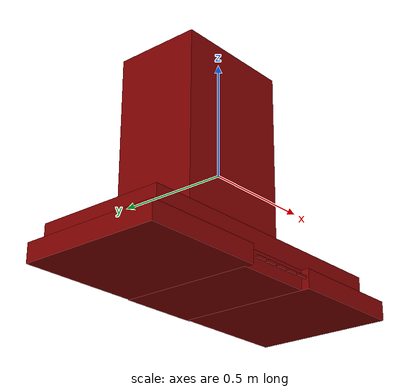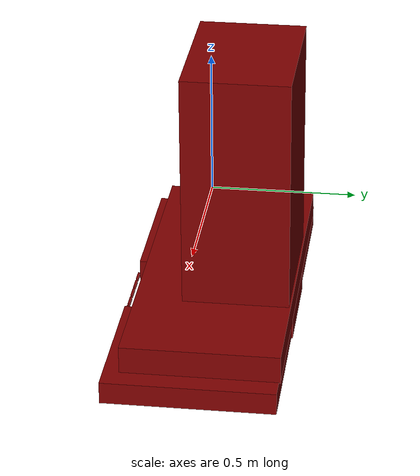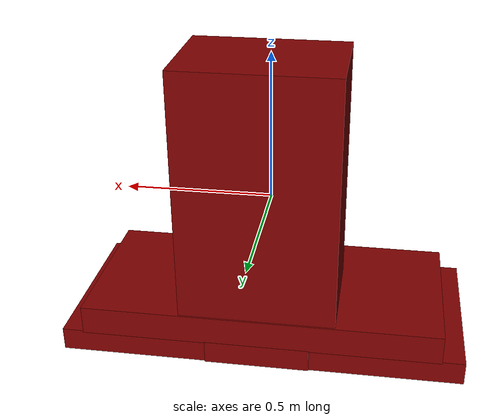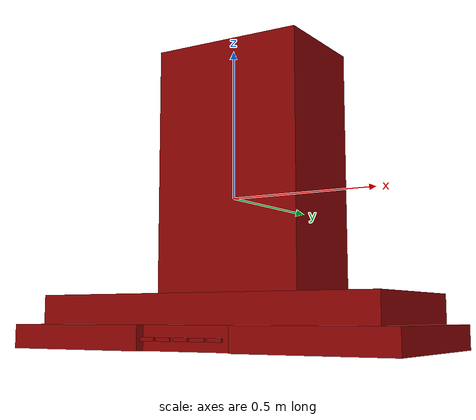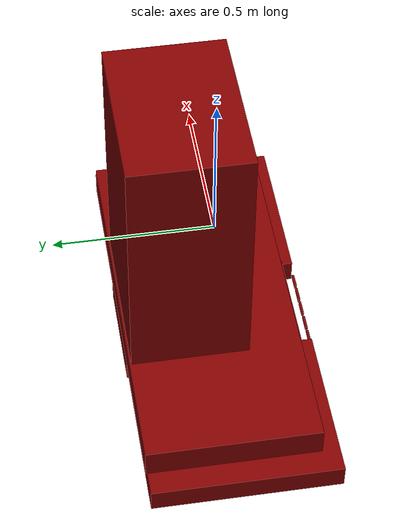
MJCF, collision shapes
<?xml version='1.0' encoding='UTF-8'?>
<mujoco model="model">
  <compiler angle="radian"/>
  <asset>
    <mesh file="visuals/Body001.obj" name="Body001_vis"/>
    <mesh file="visuals/Button001.obj" name="Button001_vis"/>
    <mesh file="visuals/Button002.obj" name="Button002_vis"/>
    <mesh file="visuals/Button003.obj" name="Button003_vis"/>
    <mesh file="visuals/Button004.obj" name="Button004_vis"/>
    <mesh file="visuals/Button005.obj" name="Button005_vis"/>
    <texture file="visuals/T_BC001.png" name="Body001_material" type="2d"/>
    <material name="Body001_material" rgba="1 1 1 1.0" texture="Body001_material" shininess="0.141421377658844" specular="0.3103448502657381"/>
    <texture file="visuals/T_BC001.png" name="Button001_material" type="2d"/>
    <material name="Button001_material" rgba="1 1 1 1.0" texture="Button001_material" shininess="0.141421377658844" specular="0.3103448502657381"/>
    <texture file="visuals/T_BC001.png" name="Button002_material" type="2d"/>
    <material name="Button002_material" rgba="1 1 1 1.0" texture="Button002_material" shininess="0.141421377658844" specular="0.3103448502657381"/>
    <texture file="visuals/T_BC001.png" name="Button003_material" type="2d"/>
    <material name="Button003_material" rgba="1 1 1 1.0" texture="Button003_material" shininess="0.141421377658844" specular="0.3103448502657381"/>
    <texture file="visuals/T_BC001.png" name="Button004_material" type="2d"/>
    <material name="Button004_material" rgba="1 1 1 1.0" texture="Button004_material" shininess="0.141421377658844" specular="0.3103448502657381"/>
    <texture file="visuals/T_BC001.png" name="Button005_material" type="2d"/>
    <material name="Button005_material" rgba="1 1 1 1.0" texture="Button005_material" shininess="0.141421377658844" specular="0.3103448502657381"/>
  </asset>
  <default>
    <default class="visual">
      <geom conaffinity="0" contype="0" group="1" type="mesh"/>
    </default>
    <default class="collision">
      <geom group="0" rgba="0.5 0 0 0.5"/>
    </default>
    <default class="spawn">
      <geom group="0" rgba="1 1 1 0.5" contype="0" conaffinity="0"/>
      <site group="0" rgba="1 1 1 0.5"/>
    </default>
    <default class="region">
      <geom group="1" conaffinity="0" contype="0" rgba="0 1 0 0"/>
    </default>
  </default>
  <worldbody>
    <body>
      <body name="object">
        <geom mesh="Body001_vis" type="mesh" solimp="0.998 0.998 0.001" solref="0.001 1" density="100" friction="0.95 0.3 0.1" class="visual" material="Body001_material"/>
        <geom class="collision" type="box" pos="-0.4182852804660797 0.0026076436042785645 -0.44733238220214844" size="0.25589534640312195 0.29818880558013916 0.039316415786743164" quat="1.0 0.0 0.0 0.0"/>
        <geom class="collision" type="box" pos="0.41978007555007935 0.0026076436042785645 -0.44733238220214844" size="0.2546223998069763 0.29818880558013916 0.039316415786743164" quat="1.0 0.0 0.0 0.0"/>
        <geom class="collision" type="box" pos="0.0073193758726119995 0.021685240790247917 -0.44733238220214844" size="0.1748066395521164 0.2842549681663513 0.039316415786743164" quat="1.0 0.0 0.0 0.0"/>
        <geom class="collision" type="box" pos="0.008313283324241638 0.11317173391580582 0.10278728604316711" size="0.25953036546707153 0.18668106198310852 0.4194078743457794" quat="1.0 0.0 0.0 0.0"/>
        <geom class="collision" type="box" pos="0.0005773454904556274 0.03299197554588318 -0.3611730635166168" size="0.5994651317596436 0.2729482352733612 0.04921938478946686" quat="1.0 0.0 0.0 0.0"/>
        <body name="Button001">
          <joint axis="0.0 1.0 0.0" pos="-0.12023848295211792 -0.2950901687145233 -0.4503890573978424" limited="true" name="Button001_joint" range="0.0 0.0034999999999999996" type="slide" damping="1" frictionloss="1" armature=".01" stiffness="0.05"/>
          <geom mesh="Button001_vis" type="mesh" solimp="0.998 0.998 0.001" solref="0.001 1" density="100" friction="0.95 0.3 0.1" class="visual" material="Button001_material"/>
          <geom class="collision" type="box" pos="-0.12014796584844589 -0.2960020899772644 -0.4501637816429138" size="0.02474355325102806 0.0038968154694885015 0.0056299977004528046" quat="1.0 0.0 0.0 0.0"/>
        </body>
        <body name="Button002">
          <joint axis="0.0 1.0 0.0" pos="-0.060466133058071136 -0.2950901389122009 -0.4503890573978424" limited="true" name="Button002_joint" range="0.0 0.0034999999999999996" type="slide" damping="1" frictionloss="1" armature=".01" stiffness="0.05"/>
          <geom mesh="Button002_vis" type="mesh" solimp="0.998 0.998 0.001" solref="0.001 1" density="100" friction="0.95 0.3 0.1" class="visual" material="Button002_material"/>
          <geom class="collision" type="box" pos="-0.06061188131570816 -0.2960020899772644 -0.4501637816429138" size="0.02474355325102806 0.0038968173321336508 0.005630000028759241" quat="1.0 0.0 0.0 0.0"/>
        </body>
        <body name="Button003">
          <joint axis="0.0 1.0 0.0" pos="0.0009697694331407547 -0.2950901389122009 -0.4503890573978424" limited="true" name="Button003_joint" range="0.0 0.0034999999999999996" type="slide" damping="1" frictionloss="1" armature=".01" stiffness="0.05"/>
          <geom mesh="Button003_vis" type="mesh" solimp="0.998 0.998 0.001" solref="0.001 1" density="100" friction="0.95 0.3 0.1" class="visual" material="Button003_material"/>
          <geom class="collision" type="box" pos="0.000803014263510704 -0.2960020899772644 -0.4501637816429138" size="0.02474355325102806 0.0038968191947788 0.005630002357065678" quat="1.0 0.0 0.0 0.0"/>
        </body>
        <body name="Button004">
          <joint axis="0.0 1.0 0.0" pos="0.060742128640413284 -0.29509010910987854 -0.4503890573978424" limited="true" name="Button004_joint" range="0.0 0.0034999999999999996" type="slide" damping="1" frictionloss="1" armature=".01" stiffness="0.05"/>
          <geom mesh="Button004_vis" type="mesh" solimp="0.998 0.998 0.001" solref="0.001 1" density="100" friction="0.95 0.3 0.1" class="visual" material="Button004_material"/>
          <geom class="collision" type="box" pos="0.060245878994464874 -0.2960020899772644 -0.4501637816429138" size="0.02474355325102806 0.0038968210574239492 0.005630004685372114" quat="1.0 0.0 0.0 0.0"/>
        </body>
        <body name="Button005">
          <joint axis="0.0 1.0 0.0" pos="0.11976182460784912 -0.29509010910987854 -0.4503890573978424" limited="true" name="Button005_joint" range="0.0 0.0034999999999999996" type="slide" damping="1" frictionloss="1" armature=".01" stiffness="0.05"/>
          <geom mesh="Button005_vis" type="mesh" solimp="0.998 0.998 0.001" solref="0.001 1" density="100" friction="0.95 0.3 0.1" class="visual" material="Button005_material"/>
          <geom class="collision" type="box" pos="0.11965348571538925 -0.2960020899772644 -0.4501637816429138" size="0.02474355325102806 0.0038968229200690985 0.005630007479339838" quat="1.0 0.0 0.0 0.0"/>
        </body>
        <geom class="region" name="reg_main" type="box" pos="-1.4901161193847656e-08 0.0 0.0" size="0.6713911294937134 0.29971373081207275 0.5197280645370483"/>
      </body>
    </body>
  </worldbody>
  <actuator>
    <motor name="Button001_joint_actuator" joint="Button001_joint" gear="0.5"/>
    <motor name="Button002_joint_actuator" joint="Button002_joint" gear="0.5"/>
    <motor name="Button003_joint_actuator" joint="Button003_joint" gear="0.5"/>
    <motor name="Button004_joint_actuator" joint="Button004_joint" gear="0.5"/>
    <motor name="Button005_joint_actuator" joint="Button005_joint" gear="0.5"/>
  </actuator>
</mujoco>
